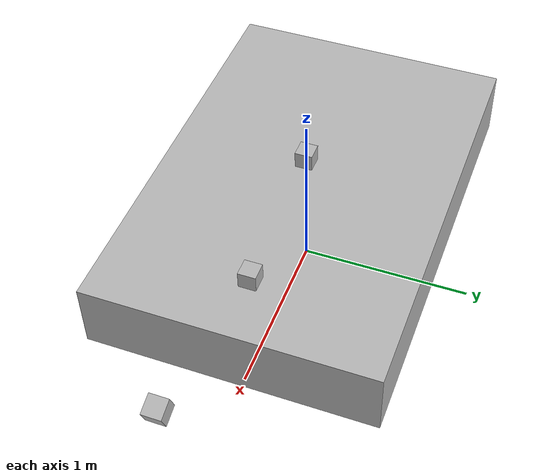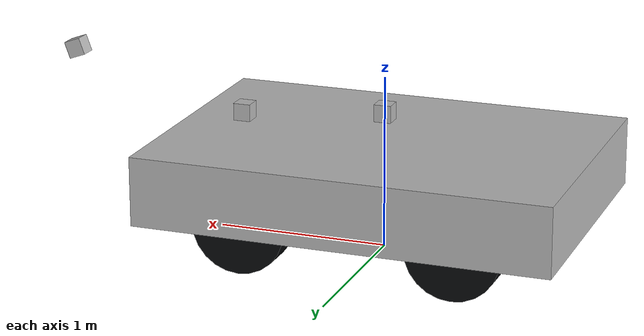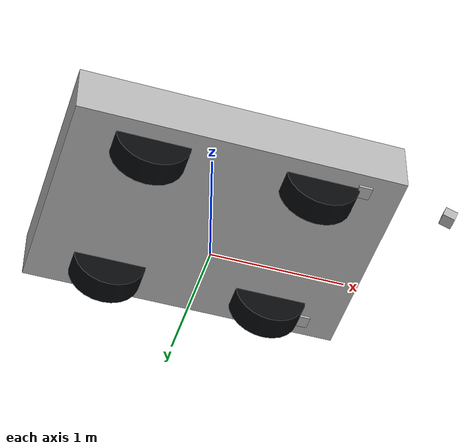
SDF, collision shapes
<?xml version="1.0"?>
<sdf version="1.6">

    <model name='gen0_model'>
        <!-- Define robot links -->
        <link name="base_link">
            <pose>0 0 0 0 0 0</pose>
            <visual name='visual'>
                <visibility_flags>0x02</visibility_flags>
                <geometry>
                    <mesh>
                        <uri>../meshes/gen0_cad/gen0_body.dae</uri>
                        <scale>1 1 1</scale>
                    </mesh>
                </geometry>
            </visual>
            <collision name='collision_base_link'>
                <pose>0 0 0.45 0 0 0</pose>
                <geometry>
                    <box>
                        <size>2.40 1.65 0.40</size>
                    </box>
                </geometry>
            </collision>
        </link>

        <link name="main_mass">
            <pose>0 0 0 0 0 0</pose>
            <inertial>
                <mass>1703.239</mass> <!-- Mass value is incorrect as the intertias are wrong-->
                <inertia>
                    <ixx>347.195805</ixx>
                    <ixy>-11.4914985</ixy>
                    <ixz>18.5070628</ixz>
                    <iyy>2330.10026</iyy>
                    <iyz>3.97814264</iyz>
                    <izz>2529.41827</izz>
                </inertia>
            </inertial>
        </link>

        <link name="back_right_steering_link">
            <pose>-0.616 -0.599 0.272 0 0 0</pose>
            <inertial>
                <mass>8.0</mass>
                <inertia>
                    <ixx>0.08</ixx>
                    <ixy>0</ixy>
                    <ixz>0</ixz>
                    <iyy>0.04</iyy>
                    <iyz>0</iyz>
                    <izz>0.04</izz>
                </inertia>
            </inertial>
            <visual name='visual_back_right_steering'>
                <visibility_flags>0x02</visibility_flags>
                <pose>0 0 0 1.570796 0 0</pose>
                <geometry>
                    <cylinder>
                        <length>0.05</length>
                        <radius>0.1</radius>
                    </cylinder>
                </geometry>
                <material>
                    <ambient>0.2 0.2 0.2 1</ambient>
                    <diffuse>0.2 0.2 0.2 1</diffuse>
                    <specular>0.2 0.2 0.2 1</specular>
                </material>
            </visual>
            <collision name='collision_back_right_steering'>
                <pose>0 0 0 1.570796 0 0</pose>
                <geometry>
                    <cylinder>
                        <length>0.05</length>
                        <radius>0.1</radius>
                    </cylinder>
                </geometry>
            </collision>
        </link>

        <link name="back_right_wheel_link">
            <pose>-0.616 -0.599 0.272 0 0 -1.570796</pose>
            <inertial>
                <mass>20.00</mass>
                <inertia>
                    <ixx>1.089</ixx>
                    <ixy>0</ixy>
                    <ixz>0</ixz>
                    <iyy>0.5985</iyy>
                    <iyz>0</iyz>
                    <izz>0.5985</izz>
                </inertia>
            </inertial>
            <visual name='visual_back_right_wheel'>
                <visibility_flags>0x02</visibility_flags>
                <geometry>
                    <mesh>
                        <uri>../meshes/gen0_cad/gen0_tyre.dae</uri>
                        <scale>1 1 1</scale>
                    </mesh>
                </geometry>
                <material>
                    <ambient>0.012 0.016 0.020 1</ambient>
                    <diffuse>0.030 0.038 0.046 1</diffuse>
                    <specular>0.10 0.10 0.10 1</specular>
                </material>
            </visual>
            <collision name='collision_back_right_wheel'>
                <pose>0 0 0 0 1.570796 0</pose>
                <geometry>
                    <cylinder>
                        <length>0.195</length>
                        <radius>0.272</radius>
                    </cylinder>
                </geometry>
                <surface>
                    <friction>
                        <ode>
                            <mu>1.2</mu>
                            <mu2>1.0</mu2>
                        </ode>
                    </friction>
                    <bounce>
                        <restitution_coefficient>0.0</restitution_coefficient>
                    </bounce>
                    <contact>
                        <ode>
                            <soft_cfm>0.001</soft_cfm>
                            <soft_erp>0.5</soft_erp>
                            <kp>1000000</kp>
                            <kd>100</kd>
                        </ode>
                    </contact>
                </surface>
            </collision>

        </link>

        <link name="back_left_steering_link">
            <pose>-0.616 0.599 0.272 0 0 0</pose>
            <inertial>
                <mass>8.0</mass>
                <inertia>
                    <ixx>0.08</ixx>
                    <ixy>0</ixy>
                    <ixz>0</ixz>
                    <iyy>0.04</iyy>
                    <iyz>0</iyz>
                    <izz>0.04</izz>
                </inertia>
            </inertial>
            <visual name='visual_back_left_steering'>
                <visibility_flags>0x02</visibility_flags>
                <pose>0 0 0 1.570796 0 0</pose>
                <geometry>
                    <cylinder>
                        <length>0.05</length>
                        <radius>0.1</radius>
                    </cylinder>
                </geometry>
                <material>
                    <ambient>0.2 0.2 0.2 1</ambient>
                    <diffuse>0.2 0.2 0.2 1</diffuse>
                    <specular>0.2 0.2 0.2 1</specular>
                </material>
            </visual>
            <collision name='collision_back_left_steering'>
                <pose>0 0 0 1.570796 0 0</pose>
                <geometry>
                    <cylinder>
                        <length>0.05</length>
                        <radius>0.1</radius>
                    </cylinder>
                </geometry>
            </collision>
        </link>

        <link name="back_left_wheel_link">
            <pose>-0.616 0.599 0.272 0 0 1.570796</pose>
            <inertial>
                <mass>20.00</mass>
                <inertia>
                    <ixx>1.089</ixx>
                    <ixy>0</ixy>
                    <ixz>0</ixz>
                    <iyy>0.5985</iyy>
                    <iyz>0</iyz>
                    <izz>0.5985</izz>
                </inertia>
            </inertial>
            <visual name='visual_back_left_wheel'>
                <visibility_flags>0x02</visibility_flags>
                <geometry>
                    <mesh>
                        <uri>../meshes/gen0_cad/gen0_tyre.dae</uri>
                        <scale>1 1 1</scale>
                    </mesh>
                </geometry>
                <material>
                    <ambient>0.012 0.016 0.020 1</ambient>
                    <diffuse>0.030 0.038 0.046 1</diffuse>
                    <specular>0.10 0.10 0.10 1</specular>
                </material>
            </visual>
            <collision name='collision_back_left_wheel'>
                <pose>0 0 0 0 1.570796 0</pose>
                <geometry>
                    <cylinder>
                        <length>0.195</length>
                        <radius>0.272</radius>
                    </cylinder>
                </geometry>
                <surface>
                    <friction>
                        <ode>
                            <mu>1.2</mu>
                            <mu2>1.0</mu2>
                        </ode>
                    </friction>
                    <bounce>
                        <restitution_coefficient>0.0</restitution_coefficient>
                    </bounce>
                    <contact>
                        <ode>
                            <soft_cfm>0.001</soft_cfm>
                            <soft_erp>0.5</soft_erp>
                            <kp>1000000</kp>
                            <kd>100</kd>
                        </ode>
                    </contact>
                </surface>
            </collision>
        </link>

        <link name="front_right_steering_link">
            <pose>0.616 -0.599 0.272 0 0 0</pose>
            <inertial>
                <mass>8.0</mass>
                <inertia>
                    <ixx>0.08</ixx>
                    <ixy>0</ixy>
                    <ixz>0</ixz>
                    <iyy>0.04</iyy>
                    <iyz>0</iyz>
                    <izz>0.04</izz>
                </inertia>
            </inertial>
            <visual name='visual_front_right_steering'>
                <visibility_flags>0x02</visibility_flags>
                <pose>0 0 0 1.570796 0 0</pose>
                <geometry>
                    <cylinder>
                        <length>0.05</length>
                        <radius>0.1</radius>
                    </cylinder>
                </geometry>
                <material>
                    <ambient>0.2 0.2 0.2 1</ambient>
                    <diffuse>0.2 0.2 0.2 1</diffuse>
                    <specular>0.2 0.2 0.2 1</specular>
                </material>
            </visual>
            <collision name='collision_front_right_steering'>
                <pose>0 0 0 1.570796 0 0</pose>
                <geometry>
                    <cylinder>
                        <length>0.05</length>
                        <radius>0.1</radius>
                    </cylinder>
                </geometry>
            </collision>
        </link>

        <link name="front_right_wheel_link">
            <pose>0.616 -0.599 0.272 0 0 -1.570796</pose>
            <inertial>
                <mass>20.00</mass>
                <inertia>
                    <ixx>1.089</ixx>
                    <ixy>0</ixy>
                    <ixz>0</ixz>
                    <iyy>0.5985</iyy>
                    <iyz>0</iyz>
                    <izz>0.5985</izz>
                </inertia>
            </inertial>
            <visual name='visual_front_right_wheel'>
                <visibility_flags>0x02</visibility_flags>
                <geometry>
                    <mesh>
                        <uri>../meshes/gen0_cad/gen0_tyre.dae</uri>
                        <scale>1 1 1</scale>
                    </mesh>
                </geometry>
                <material>
                    <ambient>0.012 0.016 0.020 1</ambient>
                    <diffuse>0.030 0.038 0.046 1</diffuse>
                    <specular>0.10 0.10 0.10 1</specular>
                </material>
            </visual>
            <collision name='collision_front_right_wheel'>
                <pose>0 0 0 0 1.570796 0</pose>
                <geometry>
                    <cylinder>
                        <length>0.195</length>
                        <radius>0.272</radius>
                    </cylinder>
                </geometry>
                <surface>
                    <friction>
                        <ode>
                            <mu>1.2</mu>
                            <mu2>1.0</mu2>
                        </ode>
                    </friction>
                    <bounce>
                        <restitution_coefficient>0.0</restitution_coefficient>
                    </bounce>
                    <contact>
                        <ode>
                            <soft_cfm>0.001</soft_cfm>
                            <soft_erp>0.5</soft_erp>
                            <kp>1000000</kp>
                            <kd>100</kd>
                        </ode>
                    </contact>
                </surface>
            </collision>
        </link>

        <link name="front_left_steering_link">
            <pose>0.616 0.599 0.272 0 0 0</pose>
            <inertial>
                <mass>8.0</mass>
                <inertia>
                    <ixx>0.08</ixx>
                    <ixy>0</ixy>
                    <ixz>0</ixz>
                    <iyy>0.04</iyy>
                    <iyz>0</iyz>
                    <izz>0.04</izz>
                </inertia>
            </inertial>
            <visual name='visual_front_left_steering'>
                <visibility_flags>0x02</visibility_flags>
                <pose>0 0 0 1.570796 0 0</pose>
                <geometry>
                    <cylinder>
                        <length>0.05</length>
                        <radius>0.1</radius>
                    </cylinder>
                </geometry>
                <material>
                    <ambient>0.2 0.2 0.2 1</ambient>
                    <diffuse>0.2 0.2 0.2 1</diffuse>
                    <specular>0.2 0.2 0.2 1</specular>
                </material>
            </visual>
            <collision name='collision_front_left_steering'>
                <pose>0 0 0 1.570796 0 0</pose>
                <geometry>
                    <cylinder>
                        <length>0.05</length>
                        <radius>0.1</radius>
                    </cylinder>
                </geometry>
            </collision>
        </link>

        <link name="front_left_wheel_link">
            <pose>0.616 0.599 0.272 0 0 1.570796</pose>
            <inertial>
                <mass>20.00</mass>
                <inertia>
                    <ixx>1.089</ixx>
                    <ixy>0</ixy>
                    <ixz>0</ixz>
                    <iyy>0.5985</iyy>
                    <iyz>0</iyz>
                    <izz>0.5985</izz>
                </inertia>
            </inertial>
            <visual name='visual_front_left_wheel'>
                <visibility_flags>0x02</visibility_flags>
                <geometry>
                    <mesh>
                        <uri>../meshes/gen0_cad/gen0_tyre.dae</uri>
                        <scale>1 1 1</scale>
                    </mesh>
                </geometry>
                <material>
                    <ambient>0.012 0.016 0.020 1</ambient>
                    <diffuse>0.030 0.038 0.046 1</diffuse>
                    <specular>0.10 0.10 0.10 1</specular>
                </material>
            </visual>
            <collision name='collision_front_left_wheel'>
                <pose>0 0 0 0 1.570796 0</pose>
                <geometry>
                    <cylinder>
                        <length>0.195</length>
                        <radius>0.272</radius>
                    </cylinder>
                </geometry>
                <surface>
                    <friction>
                        <ode>
                            <mu>1.2</mu>
                            <mu2>1.0</mu2>
                        </ode>
                    </friction>
                    <bounce>
                        <restitution_coefficient>0.0</restitution_coefficient>
                    </bounce>
                    <contact>
                        <ode>
                            <soft_cfm>0.001</soft_cfm>
                            <soft_erp>0.5</soft_erp>
                            <kp>1000000</kp>
                            <kd>100</kd>
                        </ode>
                    </contact>
                </surface>
            </collision>
        </link>
        <link name="front_3d_lidar_link">
            <pose>0.85 0 0.72 0 0 0</pose>
            <inertial>
                <mass>0.1</mass>
                <inertia>
                    <ixx>0.000166667</ixx>
                    <iyy>0.000166667</iyy>
                    <izz>0.000166667</izz>
                </inertia>
            </inertial>

            <collision name="lidar_collision">
                <geometry>
                    <box>
                        <size>0.1 0.1 0.1</size>
                    </box>
                </geometry>
            </collision>
            <visual name="lidar_visual">
                <visibility_flags>0x00</visibility_flags>
                <geometry>
                    <box>
                        <size>0.1 0.1 0.1</size>
                    </box>
                </geometry>
            </visual>

            <sensor name='front_3d_gpu_lidar' type='gpu_lidar'>
                <pose>0 0 0 0 0 0</pose>
                <topic>front3d/scan</topic>
                <ignition_frame_id>front_3d_lidar_link</ignition_frame_id>
                <update_rate>10</update_rate>
                <lidar>
                    <visibility_mask>0x01</visibility_mask>
                    <scan>
                        <horizontal>
                            <samples>1024</samples>
                            <min_angle>-1.5707</min_angle>
                            <max_angle>1.5707</max_angle>
                        </horizontal>
                        <vertical>
                            <samples>64</samples>
                            <min_angle>-0.3926991</min_angle>
                            <max_angle>0.3926991</max_angle>
                        </vertical>
                    </scan>
                    <range>
                        <min>0.5</min>
                        <max>170</max>
                        <resolution>0.02</resolution>
                    </range>
                </lidar>
                <visualize>false</visualize>
            </sensor>
        </link>
        <link name="front_camera_link">
            <pose>1.9 0 1.0 0 0.349 0</pose>
            <inertial>
                <mass>0.1</mass>
                <inertia>
                    <ixx>0.000166667</ixx>
                    <iyy>0.000166667</iyy>
                    <izz>0.000166667</izz>
                </inertia>
            </inertial>
            <collision name="camera_collision">
                <geometry>
                    <box>
                        <size>0.1 0.1 0.1</size>
                    </box>
                </geometry>
            </collision>
            <visual name="camera_visual">
                <visibility_flags>0x00</visibility_flags>
                <geometry>
                    <box>
                        <size>0.1 0.1 0.1</size>
                    </box>
                </geometry>
            </visual>

            <sensor name="front_camera" type="camera">
                <pose>0 0 0 0 0 0</pose>
                <topic>camera/images</topic>

                <camera>
                    <horizontal_fov>0.8727</horizontal_fov>

                    <image>
                        <width>1600</width>
                        <height>1200</height>
                        <format>R8G8B8</format>
                    </image>
                    <clip>
                        <near>0.1</near>
                        <far>100</far>
                    </clip>
                </camera>
                <update_rate>20</update_rate>
                 <always_on>1</always_on>
                <visualize>false</visualize>
            </sensor>
        </link>

        <link name="fr_2d_lidar_link">
            <pose>0.92 -0.68 0.28 0 0 0</pose>
            <inertial>
                <mass>0.1</mass>
                <inertia>
                    <ixx>0.000166667</ixx>
                    <iyy>0.000166667</iyy>
                    <izz>0.000166667</izz>
                </inertia>
            </inertial>
            <collision name="fr_2d_lidar_collision">
                <geometry>
                    <box>
                        <size>0.1 0.1 0.1</size>
                    </box>
                </geometry>
            </collision>
            <visual name="fr_2d_lidar_visual">
                <visibility_flags>0x00</visibility_flags>
                <geometry>
                    <box>
                        <size>0.1 0.1 0.1</size>
                    </box>
                </geometry>
            </visual>

            <sensor name='fr_2d_gpu_lidar' type='gpu_lidar'>
                <pose>0 0 0 0 0 0</pose>
                <topic>fr/scan</topic>
                <ignition_frame_id>fr_2d_lidar_link</ignition_frame_id>
                <update_rate>20</update_rate>
                <lidar>
                    <visibility_mask>0x01</visibility_mask>
                    <scan>
                        <horizontal>
                            <samples>640</samples>
                            <min_angle>-2.356</min_angle>
                            <max_angle>1.5</max_angle>
                        </horizontal>
                        <vertical>
                            <samples>1</samples>
                            <min_angle>0.0</min_angle>
                            <max_angle>0.0</max_angle>
                        </vertical>
                    </scan>
                    <range>
                        <min>0.5</min>
                        <max>30</max>
                        <resolution>0.01</resolution>
                    </range>
                </lidar>
                <visualize>false</visualize>
            </sensor>
        </link>

        <link name="fl_2d_lidar_link">
            <pose>0.92 0.68 0.28 0 0 0</pose>
            <inertial>
                <mass>0.1</mass>
                <inertia>
                    <ixx>0.000166667</ixx>
                    <iyy>0.000166667</iyy>
                    <izz>0.000166667</izz>
                </inertia>
            </inertial>
            <collision name="fl_2d_lidar_collision">
                <geometry>
                    <box>
                        <size>0.1 0.1 0.1</size>
                    </box>
                </geometry>
            </collision>
            <visual name="fl_2d_lidar_visual">
                <visibility_flags>0x00</visibility_flags>
                <geometry>
                    <box>
                        <size>0.1 0.1 0.1</size>
                    </box>
                </geometry>
            </visual>

            <sensor name='fl_2d_gpu_lidar' type='gpu_lidar'>
                <pose>0 0 0 0 0 0</pose>
                <topic>fl/scan</topic>
                <ignition_frame_id>fl_2d_lidar_link</ignition_frame_id>
                <update_rate>20</update_rate>
                <lidar>
                    <visibility_mask>0x01</visibility_mask>
                    <scan>
                        <horizontal>
                            <samples>640</samples>
                            <min_angle>-1.5</min_angle>
                            <max_angle>2.356</max_angle>
                        </horizontal>
                        <vertical>
                            <samples>1</samples>
                            <min_angle>0.0</min_angle>
                            <max_angle>0.0</max_angle>
                        </vertical>
                    </scan>
                    <range>
                        <min>0.5</min>
                        <max>30</max>
                        <resolution>0.01</resolution>
                    </range>
                </lidar>
                <visualize>false</visualize>
            </sensor>
        </link>

        <link name="imu_link">
            <pose>0 0 0 0 0 0</pose>
            <sensor name='imu_sensor' type='imu'>
                <always_on>1</always_on>
                <update_rate>100</update_rate>
                <visualize>false</visualize>
                <topic>imu</topic>
            </sensor>
        </link>

      <link name="gps_link">
        <pose>0 0 0.80 0 0 0</pose>
        <inertial>
          <mass>0.1</mass>
          <inertia>
            <ixx>0.000166667</ixx>
            <iyy>0.000166667</iyy>
            <izz>0.000166667</izz>
          </inertia>
        </inertial>
        <collision name="collision">
          <geometry>
            <box>
              <size>0.1 0.1 0.1</size>
            </box>
          </geometry>
        </collision>
        <visual name="visual">
          <visibility_flags>0x00</visibility_flags>
          <geometry>
            <box>
              <size>0.1 0.1 0.1</size>
            </box>
          </geometry>
        </visual>

        <sensor name="navsat" type="navsat">
          <always_on>1</always_on>
          <update_rate>10</update_rate>
          <topic>navsat</topic>
          <ignition_frame_id>gps_link</ignition_frame_id>
        </sensor>
      </link>

        <joint name="inertial_joint" type="fixed">
            <parent>base_link</parent>
            <child>main_mass</child>
        </joint>

        <joint name='front_3d_lidar_joint' type='fixed'>
            <parent>base_link</parent>
            <child>front_3d_lidar_link</child>
        </joint>
        <joint name='front_camera_joint' type='fixed'>
            <parent>base_link</parent>
            <child>front_camera_link</child>
        </joint>

        <joint name='fr_2d_lidar_joint' type='fixed'>
            <parent>base_link</parent>
            <child>fr_2d_lidar_link</child>
        </joint>

        <joint name='fl_2d_lidar_joint' type='fixed'>
            <parent>base_link</parent>
            <child>fl_2d_lidar_link</child>
        </joint>

        <joint name='imu_joint' type='fixed'>
            <parent>base_link</parent>
            <child>imu_link</child>
        </joint>

        <joint name='gps_joint' type='fixed'>
            <parent>base_link</parent>
            <child>gps_link</child>
        </joint>

        <!-- Standard Ackermann: rear wheels are fixed, non-steering wheels. -->
        <joint name="back_right_steering_joint" type="fixed">
            <parent>base_link</parent>
            <child>back_right_steering_link</child>
        </joint>

        <joint name="back_right_wheel_joint" type="revolute">
            <parent>back_right_steering_link</parent>
            <child>back_right_wheel_link</child>
            <axis>
                <xyz>-1 0 0</xyz>
                <limit>
                    <lower>-1.79769e+308</lower>
                    <upper>1.79769e+308</upper>
                    <effort>10000</effort>
                    <velocity>5000</velocity>
                </limit>
            </axis>
            <dynamics>
                <damping>0.01</damping>
            </dynamics>
            <joint_properties>
                <damping>10</damping>
                <friction>1.0</friction>
            </joint_properties>
        </joint>

        <joint name="back_left_steering_joint" type="fixed">
            <parent>base_link</parent>
            <child>back_left_steering_link</child>
        </joint>

        <joint name="back_left_wheel_joint" type="revolute">
            <parent>back_left_steering_link</parent>
            <child>back_left_wheel_link</child>
            <axis>
                <xyz>1 0 0</xyz>
                <limit>
                    <lower>-1.79769e+308</lower>
                    <upper>1.79769e+308</upper>
                    <effort>10000</effort>
                    <velocity>5000</velocity>
                </limit>
            </axis>
            <dynamics>
                <damping>0.01</damping>
            </dynamics>
            <joint_properties>
                <damping>10</damping>
                <friction>1.0</friction>
            </joint_properties>
        </joint>

        <joint name="front_right_steering_joint" type="revolute">
            <parent>base_link</parent>
            <child>front_right_steering_link</child>
            <axis>
                <xyz>0 0 1</xyz>
                <limit>
                    <lower>-0.4</lower>
                    <upper>0.4</upper>
                    <velocity>1000</velocity>
                    <effort>10000</effort>
                </limit>
            </axis>
        </joint>

        <joint name="front_right_wheel_joint" type="revolute">
            <parent>front_right_steering_link</parent>
            <child>front_right_wheel_link</child>
            <axis>
                <xyz>-1 0 0</xyz>
                <limit>
                    <lower>-1.79769e+308</lower>
                    <upper>1.79769e+308</upper>
                    <effort>10000</effort>
                    <velocity>5000</velocity>
                </limit>
            </axis>
            <dynamics>
                <damping>0.01</damping>
            </dynamics>
            <joint_properties>
                <damping>10</damping>
                <friction>1.0</friction>
            </joint_properties>
        </joint>

        <joint name="front_left_steering_joint" type="revolute">
            <parent>base_link</parent>
            <child>front_left_steering_link</child>
            <axis>
                <xyz>0 0 1</xyz>
                <limit>
                    <lower>-0.4</lower>
                    <upper>0.4</upper>
                    <velocity>1000</velocity>
                    <effort>10000</effort>
                </limit>
            </axis>
        </joint>

        <joint name="front_left_wheel_joint" type="revolute">
            <parent>front_left_steering_link</parent>
            <child>front_left_wheel_link</child>
            <axis>
                <xyz>1 0 0</xyz>
                <limit>
                    <lower>-1.79769e+308</lower>
                    <upper>1.79769e+308</upper>
                    <effort>10000</effort>
                    <velocity>5000</velocity>
                </limit>
            </axis>
            <dynamics>
                <damping>0.01</damping>
            </dynamics>
            <joint_properties>
                <damping>10</damping>
                <friction>1.0</friction>
            </joint_properties>
        </joint>

        <!-- Standard front-steering, four-wheel-drive Ackermann control. -->
        <plugin
            filename="ignition-gazebo-ackermann-steering-system"
            name="gz::sim::systems::AckermannSteering">
            <topic>/cmd_vel</topic>
            <left_joint>front_left_wheel_joint</left_joint>
            <left_joint>back_left_wheel_joint</left_joint>
            <right_joint>front_right_wheel_joint</right_joint>
            <right_joint>back_right_wheel_joint</right_joint>
            <left_steering_joint>front_left_steering_joint</left_steering_joint>
            <right_steering_joint>front_right_steering_joint</right_steering_joint>
            <kingpin_width>1.198</kingpin_width>
            <steering_limit>0.4</steering_limit>
            <wheel_base>1.232</wheel_base>
            <wheel_separation>1.198</wheel_separation>
            <wheel_radius>0.272</wheel_radius>
            <min_velocity>-1.0</min_velocity>
            <max_velocity>3.0</max_velocity>
            <min_acceleration>-1.5</min_acceleration>
            <max_acceleration>1.0</max_acceleration>
        </plugin>

        <plugin
            filename="ignition-gazebo-odometry-publisher-system"
            name="ignition::gazebo::systems::OdometryPublisher">
            <odom_frame>odom</odom_frame>
            <robot_base_frame>base_link</robot_base_frame>
            <dimensions>3</dimensions>
            <odom_publish_frequency>50</odom_publish_frequency>
            <odom_topic>/odom</odom_topic>
            <tf_topic>/tf</tf_topic>
        </plugin>

        <plugin
            filename="ignition-gazebo-joint-state-publisher-system"
            name="gz::sim::systems::JointStatePublisher">
        </plugin>

        <plugin
            filename="ignition-gazebo-pose-publisher-system"
            name="gz::sim::systems::PosePublisher">
            <publish_link_pose>true</publish_link_pose>
            <use_pose_vector_msg>true</use_pose_vector_msg>
            <publish_nested_model_pose>true</publish_nested_model_pose>
            <static_publisher>false</static_publisher>
        </plugin>

    </model>

</sdf>
